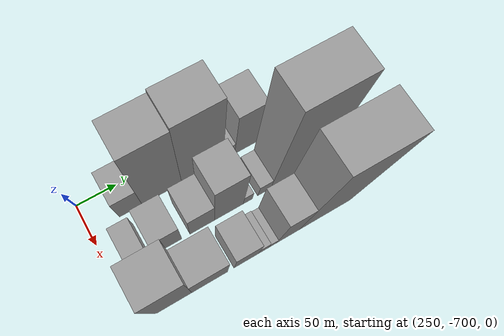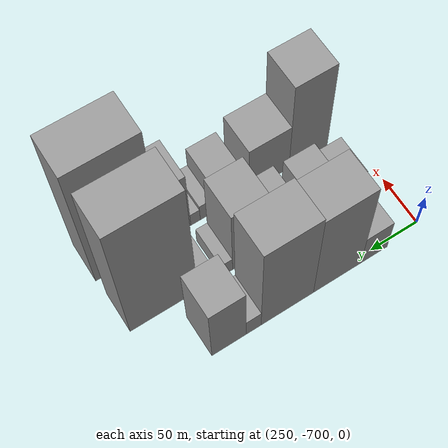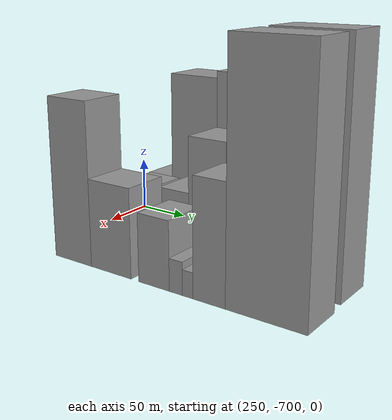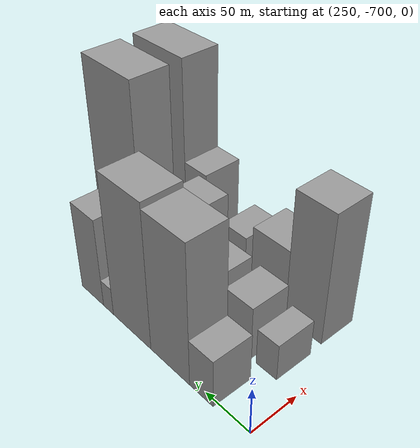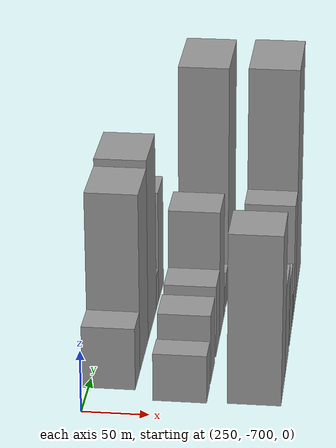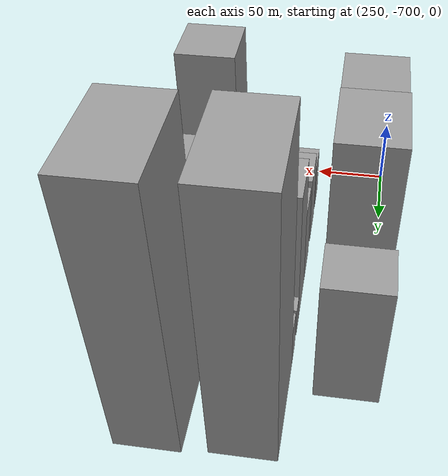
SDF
<sdf version="1.6">
 <world name="default">
  <model name="building_167">
   <static>1</static>
   <pose>265.0000 -650.1250 0 0.000000 0.000000 0.000000</pose>
   <link name="link">
    <pose>0 0 25.50 0 0 0</pose>
    <collision name="collision"><geometry><box><size>40.0000 27.9639 51.0000</size></box></geometry></collision>
    <visual name="visual">
     <cast_shadows>0</cast_shadows>
     <geometry><box><size>40.0000 27.9639 51.0000</size></box></geometry>
     <material>
      <script>
       <uri>model://grey_wall/materials/scripts</uri>
       <uri>model://grey_wall/materials/textures</uri>
       <name>vrc/grey_wall</name>
      </script>
     </material>
    </visual>
   </link>
  </model>
  <model name="building_168">
   <static>1</static>
   <pose>265.0000 -611.2651 0 0.000000 0.000000 0.000000</pose>
   <link name="link">
    <pose>0 0 73.50 0 0 0</pose>
    <collision name="collision"><geometry><box><size>40.0000 49.7558 147.0000</size></box></geometry></collision>
    <visual name="visual">
     <cast_shadows>0</cast_shadows>
     <geometry><box><size>40.0000 49.7558 147.0000</size></box></geometry>
     <material>
      <script>
       <uri>model://grey_wall/materials/scripts</uri>
       <uri>model://grey_wall/materials/textures</uri>
       <name>vrc/grey_wall</name>
      </script>
     </material>
    </visual>
   </link>
  </model>
  <model name="building_169">
   <static>1</static>
   <pose>265.0000 -559.7016 0 0.000000 0.000000 0.000000</pose>
   <link name="link">
    <pose>0 0 76.50 0 0 0</pose>
    <collision name="collision"><geometry><box><size>40.0000 53.3711 153.0000</size></box></geometry></collision>
    <visual name="visual">
     <cast_shadows>0</cast_shadows>
     <geometry><box><size>40.0000 53.3711 153.0000</size></box></geometry>
     <material>
      <script>
       <uri>model://grey_wall/materials/scripts</uri>
       <uri>model://grey_wall/materials/textures</uri>
       <name>vrc/grey_wall</name>
      </script>
     </material>
    </visual>
   </link>
  </model>
  <model name="building_170">
   <static>1</static>
   <pose>265.0000 -525.5077 0 0.000000 0.000000 0.000000</pose>
   <link name="link">
    <pose>0 0 15.00 0 0 0</pose>
    <collision name="collision"><geometry><box><size>40.0000 15.0167 30.0000</size></box></geometry></collision>
    <visual name="visual">
     <cast_shadows>0</cast_shadows>
     <geometry><box><size>40.0000 15.0167 30.0000</size></box></geometry>
     <material>
      <script>
       <uri>model://grey_wall/materials/scripts</uri>
       <uri>model://grey_wall/materials/textures</uri>
       <name>vrc/grey_wall</name>
      </script>
     </material>
    </visual>
   </link>
  </model>
  <model name="building_171">
   <static>1</static>
   <pose>265.0000 -501.1151 0 0.000000 0.000000 0.000000</pose>
   <link name="link">
    <pose>0 0 48.00 0 0 0</pose>
    <collision name="collision"><geometry><box><size>40.0000 33.7684 96.0000</size></box></geometry></collision>
    <visual name="visual">
     <cast_shadows>0</cast_shadows>
     <geometry><box><size>40.0000 33.7684 96.0000</size></box></geometry>
     <material>
      <script>
       <uri>model://grey_wall/materials/scripts</uri>
       <uri>model://grey_wall/materials/textures</uri>
       <name>vrc/grey_wall</name>
      </script>
     </material>
    </visual>
   </link>
  </model>
  <model name="building_217">
   <static>1</static>
   <pose>320.0000 -666.7759 0 0.000000 0.000000 0.000000</pose>
   <link name="link">
    <pose>0 0 19.50 0 0 0</pose>
    <collision name="collision"><geometry><box><size>40.0000 23.3271 39.0000</size></box></geometry></collision>
    <visual name="visual">
     <cast_shadows>0</cast_shadows>
     <geometry><box><size>40.0000 23.3271 39.0000</size></box></geometry>
     <material>
      <script>
       <uri>model://grey_wall/materials/scripts</uri>
       <uri>model://grey_wall/materials/textures</uri>
       <name>vrc/grey_wall</name>
      </script>
     </material>
    </visual>
   </link>
  </model>
  <model name="building_218">
   <static>1</static>
   <pose>320.0000 -632.9585 0 0.000000 0.000000 0.000000</pose>
   <link name="link">
    <pose>0 0 28.50 0 0 0</pose>
    <collision name="collision"><geometry><box><size>40.0000 32.3077 57.0000</size></box></geometry></collision>
    <visual name="visual">
     <cast_shadows>0</cast_shadows>
     <geometry><box><size>40.0000 32.3077 57.0000</size></box></geometry>
     <material>
      <script>
       <uri>model://grey_wall/materials/scripts</uri>
       <uri>model://grey_wall/materials/textures</uri>
       <name>vrc/grey_wall</name>
      </script>
     </material>
    </visual>
   </link>
  </model>
  <model name="building_219">
   <static>1</static>
   <pose>320.0000 -591.5608 0 0.000000 0.000000 0.000000</pose>
   <link name="link">
    <pose>0 0 30.00 0 0 0</pose>
    <collision name="collision"><geometry><box><size>40.0000 30.4877 60.0000</size></box></geometry></collision>
    <visual name="visual">
     <cast_shadows>0</cast_shadows>
     <geometry><box><size>40.0000 30.4877 60.0000</size></box></geometry>
     <material>
      <script>
       <uri>model://grey_wall/materials/scripts</uri>
       <uri>model://grey_wall/materials/textures</uri>
       <name>vrc/grey_wall</name>
      </script>
     </material>
    </visual>
   </link>
  </model>
  <model name="building_220">
   <static>1</static>
   <pose>320.0000 -558.0673 0 0.000000 0.000000 0.000000</pose>
   <link name="link">
    <pose>0 0 54.00 0 0 0</pose>
    <collision name="collision"><geometry><box><size>40.0000 36.4993 108.0000</size></box></geometry></collision>
    <visual name="visual">
     <cast_shadows>0</cast_shadows>
     <geometry><box><size>40.0000 36.4993 108.0000</size></box></geometry>
     <material>
      <script>
       <uri>model://grey_wall/materials/scripts</uri>
       <uri>model://grey_wall/materials/textures</uri>
       <name>vrc/grey_wall</name>
      </script>
     </material>
    </visual>
   </link>
  </model>
  <model name="building_221">
   <static>1</static>
   <pose>320.0000 -533.9635 0 0.000000 0.000000 0.000000</pose>
   <link name="link">
    <pose>0 0 12.00 0 0 0</pose>
    <collision name="collision"><geometry><box><size>40.0000 11.7083 24.0000</size></box></geometry></collision>
    <visual name="visual">
     <cast_shadows>0</cast_shadows>
     <geometry><box><size>40.0000 11.7083 24.0000</size></box></geometry>
     <material>
      <script>
       <uri>model://grey_wall/materials/scripts</uri>
       <uri>model://grey_wall/materials/textures</uri>
       <name>vrc/grey_wall</name>
      </script>
     </material>
    </visual>
   </link>
  </model>
  <model name="building_222">
   <static>1</static>
   <pose>320.0000 -512.7861 0 0.000000 0.000000 0.000000</pose>
   <link name="link">
    <pose>0 0 15.00 0 0 0</pose>
    <collision name="collision"><geometry><box><size>40.0000 16.6466 30.0000</size></box></geometry></collision>
    <visual name="visual">
     <cast_shadows>0</cast_shadows>
     <geometry><box><size>40.0000 16.6466 30.0000</size></box></geometry>
     <material>
      <script>
       <uri>model://grey_wall/materials/scripts</uri>
       <uri>model://grey_wall/materials/textures</uri>
       <name>vrc/grey_wall</name>
      </script>
     </material>
    </visual>
   </link>
  </model>
  <model name="building_223">
   <static>1</static>
   <pose>320.0000 -471.1772 0 0.000000 0.000000 0.000000</pose>
   <link name="link">
    <pose>0 0 99.00 0 0 0</pose>
    <collision name="collision"><geometry><box><size>40.0000 66.5712 198.0000</size></box></geometry></collision>
    <visual name="visual">
     <cast_shadows>0</cast_shadows>
     <geometry><box><size>40.0000 66.5712 198.0000</size></box></geometry>
     <material>
      <script>
       <uri>model://grey_wall/materials/scripts</uri>
       <uri>model://grey_wall/materials/textures</uri>
       <name>vrc/grey_wall</name>
      </script>
     </material>
    </visual>
   </link>
  </model>
  <model name="building_266">
   <static>1</static>
   <pose>375.0000 -656.2068 0 0.000000 0.000000 0.000000</pose>
   <link name="link">
    <pose>0 0 69.00 0 0 0</pose>
    <collision name="collision"><geometry><box><size>40.0000 41.8612 138.0000</size></box></geometry></collision>
    <visual name="visual">
     <cast_shadows>0</cast_shadows>
     <geometry><box><size>40.0000 41.8612 138.0000</size></box></geometry>
     <material>
      <script>
       <uri>model://grey_wall/materials/scripts</uri>
       <uri>model://grey_wall/materials/textures</uri>
       <name>vrc/grey_wall</name>
      </script>
     </material>
    </visual>
   </link>
  </model>
  <model name="building_267">
   <static>1</static>
   <pose>375.0000 -613.7316 0 0.000000 0.000000 0.000000</pose>
   <link name="link">
    <pose>0 0 37.50 0 0 0</pose>
    <collision name="collision"><geometry><box><size>40.0000 43.0893 75.0000</size></box></geometry></collision>
    <visual name="visual">
     <cast_shadows>0</cast_shadows>
     <geometry><box><size>40.0000 43.0893 75.0000</size></box></geometry>
     <material>
      <script>
       <uri>model://grey_wall/materials/scripts</uri>
       <uri>model://grey_wall/materials/textures</uri>
       <name>vrc/grey_wall</name>
      </script>
     </material>
    </visual>
   </link>
  </model>
  <model name="building_268">
   <static>1</static>
   <pose>375.0000 -568.9751 0 0.000000 0.000000 0.000000</pose>
   <link name="link">
    <pose>0 0 28.50 0 0 0</pose>
    <collision name="collision"><geometry><box><size>40.0000 30.4237 57.0000</size></box></geometry></collision>
    <visual name="visual">
     <cast_shadows>0</cast_shadows>
     <geometry><box><size>40.0000 30.4237 57.0000</size></box></geometry>
     <material>
      <script>
       <uri>model://grey_wall/materials/scripts</uri>
       <uri>model://grey_wall/materials/textures</uri>
       <name>vrc/grey_wall</name>
      </script>
     </material>
    </visual>
   </link>
  </model>
  <model name="building_269">
   <static>1</static>
   <pose>375.0000 -547.4805 0 0.000000 0.000000 0.000000</pose>
   <link name="link">
    <pose>0 0 13.50 0 0 0</pose>
    <collision name="collision"><geometry><box><size>40.0000 12.5653 27.0000</size></box></geometry></collision>
    <visual name="visual">
     <cast_shadows>0</cast_shadows>
     <geometry><box><size>40.0000 12.5653 27.0000</size></box></geometry>
     <material>
      <script>
       <uri>model://grey_wall/materials/scripts</uri>
       <uri>model://grey_wall/materials/textures</uri>
       <name>vrc/grey_wall</name>
      </script>
     </material>
    </visual>
   </link>
  </model>
  <model name="building_270">
   <static>1</static>
   <pose>375.0000 -536.3532 0 0.000000 0.000000 0.000000</pose>
   <link name="link">
    <pose>0 0 10.50 0 0 0</pose>
    <collision name="collision"><geometry><box><size>40.0000 9.6894 21.0000</size></box></geometry></collision>
    <visual name="visual">
     <cast_shadows>0</cast_shadows>
     <geometry><box><size>40.0000 9.6894 21.0000</size></box></geometry>
     <material>
      <script>
       <uri>model://grey_wall/materials/scripts</uri>
       <uri>model://grey_wall/materials/textures</uri>
       <name>vrc/grey_wall</name>
      </script>
     </material>
    </visual>
   </link>
  </model>
  <model name="building_271">
   <static>1</static>
   <pose>375.0000 -516.9762 0 0.000000 0.000000 0.000000</pose>
   <link name="link">
    <pose>0 0 48.00 0 0 0</pose>
    <collision name="collision"><geometry><box><size>40.0000 29.0646 96.0000</size></box></geometry></collision>
    <visual name="visual">
     <cast_shadows>0</cast_shadows>
     <geometry><box><size>40.0000 29.0646 96.0000</size></box></geometry>
     <material>
      <script>
       <uri>model://grey_wall/materials/scripts</uri>
       <uri>model://grey_wall/materials/textures</uri>
       <name>vrc/grey_wall</name>
      </script>
     </material>
    </visual>
   </link>
  </model>
  <model name="building_272">
   <static>1</static>
   <pose>375.0000 -469.1048 0 0.000000 0.000000 0.000000</pose>
   <link name="link">
    <pose>0 0 99.00 0 0 0</pose>
    <collision name="collision"><geometry><box><size>40.0000 66.6781 198.0000</size></box></geometry></collision>
    <visual name="visual">
     <cast_shadows>0</cast_shadows>
     <geometry><box><size>40.0000 66.6781 198.0000</size></box></geometry>
     <material>
      <script>
       <uri>model://grey_wall/materials/scripts</uri>
       <uri>model://grey_wall/materials/textures</uri>
       <name>vrc/grey_wall</name>
      </script>
     </material>
    </visual>
   </link>
  </model>
 </world>
</sdf>
